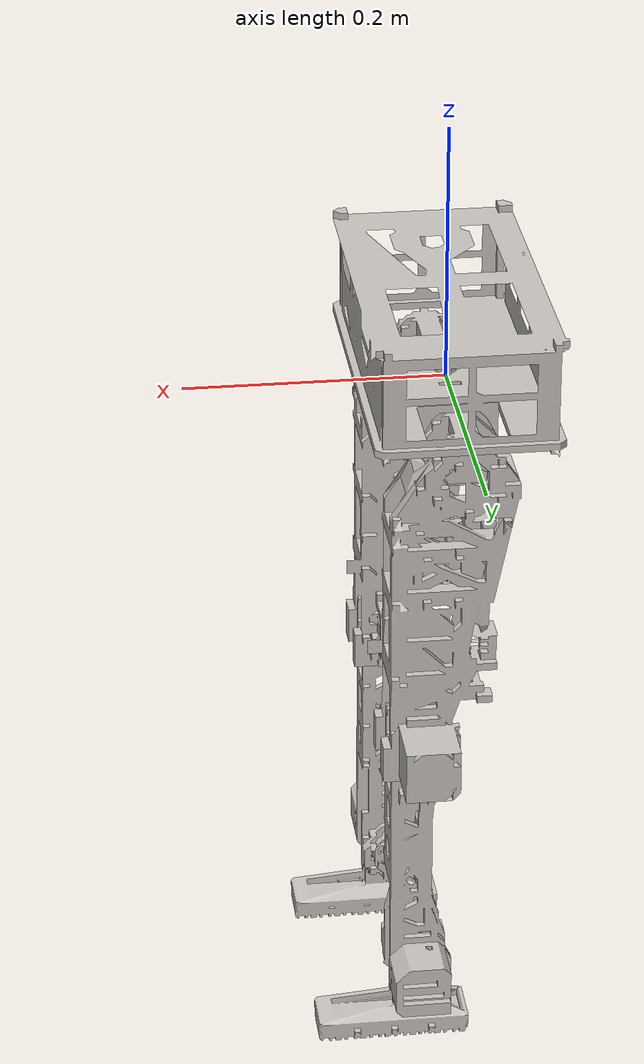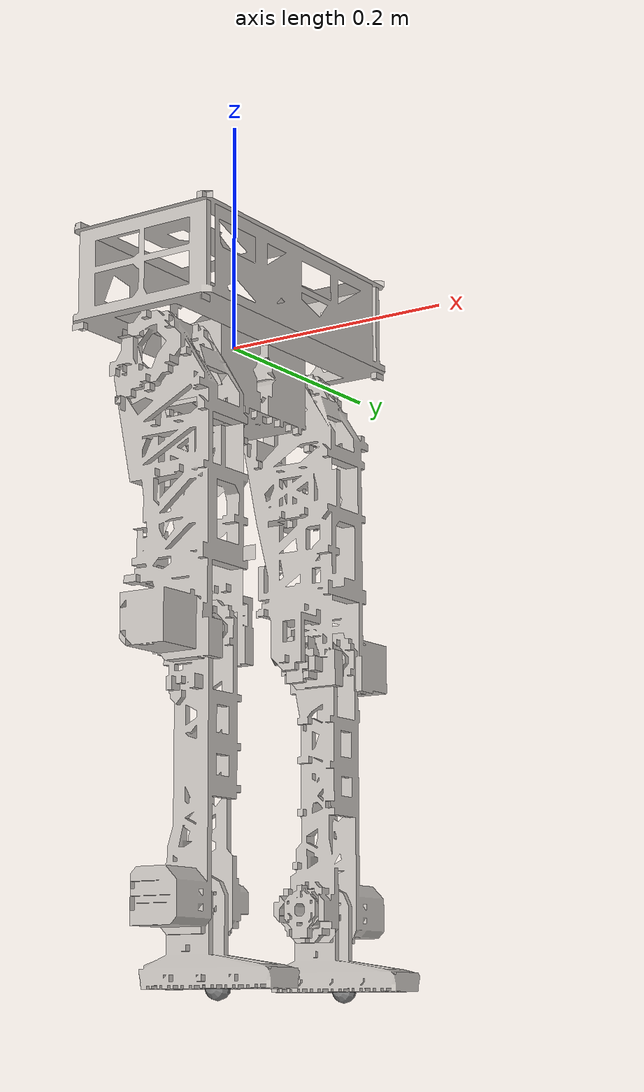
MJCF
<mujoco model="biped" >
  <compiler angle="radian" autolimits="true" eulerseq="zyx"/>
     <option timestep='0.002' iterations='50' solver='PGS' gravity='0 0 -9.81'>
    <flag frictionloss="enable"/>
    </option>
    <size njmax="500" nconmax="100" />

    <visual>
        <quality shadowsize='4096'/>
        <map znear='0.05'/>
    </visual>
    <default>
        <joint limited='true'/>
        <motor ctrllimited='true'/>
        <geom  condim='4' contype="1" conaffinity="15" solref='0.001 2' friction='0.9 0.2 0.2'/>
        <equality solref='0.001 2'/>
        <default class='leg_joint_param'>
            <!-- HTDW-4438-30 rotor inertia (9.1498e-6 kg m^2) reflected
                 through the 30:1 reducer: 9.1498e-6 * 30^2 = 0.00823482. -->
            <!-- Match G1's zero passive joint damping and dry friction. -->
            <joint damping="0" frictionloss="0" armature="0.00823482"/>
        </default>
    </default>
  <statistic meansize="0.164352" extent="1.07561" center="-0.00820016 -1.48012e-05 -0.160784"/>

  <asset>
    <mesh name="base_link" content_type="model/stl" file="../meshes/base_link.stl"/>
    <mesh name="left_leg_Link" content_type="model/stl" file="../meshes/left_leg_Link.stl"/>
    <mesh name="left_knee_link" content_type="model/stl" file="../meshes/left_knee_link.stl"/>
    <mesh name="left_ankle_link" content_type="model/stl" file="../meshes/left_ankle_link.stl"/>
    <mesh name="right_leg_link" content_type="model/stl" file="../meshes/right_leg_link.stl"/>
    <mesh name="right_knee_link" content_type="model/stl" file="../meshes/right_knee_link.stl"/>
    <mesh name="right_ankle_link" content_type="model/stl" file="../meshes/right_ankle_link.stl"/>
    <material name="matplane" reflectance="0.3" texture="texplane" texrepeat="1 1" texuniform="true"/>
    <material name="matgeom" texture="texgeom" texuniform="true" rgba="0.8 0.6 .4 1"/>
    <texture name="texplane" type="2d" builtin="checker" rgb1=".2 .3 .4" rgb2=".1 0.15 0.2" width="512" height="512" mark="cross" markrgb=".8 .8 .8"/>
    <texture name="texgeom" type="cube" builtin="flat" mark="cross" width="127" height="1278" rgb1="0.8 0.6 0.4" rgb2="0.8 0.6 0.4" markrgb="1 1 1" random="0.01"/>
    <texture type="skybox" builtin="gradient" rgb1="1 1 1" rgb2=".6 .8 1" width="256" height="256"/>
  </asset>

  <worldbody>
    <light directional="true" diffuse=".4 .4 .4" specular="0.1 0.1 0.1" pos="0 0 5.0" dir="0 0 -1" castshadow="false"/>
    <light directional="true" diffuse=".6 .6 .6" specular="0.2 0.2 0.2" pos="0 0 4" dir="0 0 -1"/>
    <body name="base_link" pos='0 0 0'>
      <inertial pos="-0.00197519 -0.000666859 0.00700943" quat="0.0557357 0.705656 0.0465698 0.704822" mass="1.0931" diaginertia="0.00811391 0.00765719 0.0041021"/>
      <joint name="base_x" type="slide" axis="1 0 0" limited="false"/>
      <joint name="base_z" type="slide" axis="0 0 1" limited="false"/>
      <joint name="base_pitch" type="hinge" axis="0 1 0" limited="false"/>
      <site name='imu' size='0.01' pos='0.0 0 0.0' quat='1 0 0 0'/>
      <geom type="mesh" contype="0" conaffinity="0" group="1" density="0" rgba="0.776471 0.756863 0.737255 1" mesh="base_link"/>
      <geom type="mesh" rgba="0.776471 0.756863 0.737255 1" mesh="base_link"/>
      <body name="left_leg_Link" pos="0 0.0634 -0.03" quat="0.707107 0.707107 0 0">
        <inertial pos="0.0149188 -0.106758 -0.0292734" quat="0.51360603 -0.51748603 0.408033023 0.549478032" mass="0.69421" diaginertia="0.00626842 0.00617262 0.000852461"/>
        <joint name="left_leg_joint" pos="0 0 0" axis="0 0 1" limited="true" range="-1.05 1.05" class="leg_joint_param"/>
        <geom type="mesh" contype="0" conaffinity="0" group="1" density="0" rgba="0.776471 0.756863 0.737255 1" mesh="left_leg_Link"/>
        <geom type="mesh" rgba="0.776471 0.756863 0.737255 1" mesh="left_leg_Link"/>
        <body name="left_knee_link" pos="0.0299965 -0.228032 -0.053">
          <inertial pos="0.00251067 -0.0938939 0.0258415" quat="0.463290982 -0.548200978 0.452082982 0.529582979" mass="0.482446" diaginertia="0.00417607 0.00406523 0.000257004"/>
          <joint name="left_knee_joint" pos="0 0 0" axis="0 0 1" limited="true" range="-2.09 0" class="leg_joint_param"/>
          <geom type="mesh" contype="0" conaffinity="0" group="1" density="0" rgba="0.776471 0.756863 0.737255 1" mesh="left_knee_link"/>
          <geom type="mesh" rgba="0.776471 0.756863 0.737255 1" mesh="left_knee_link"/>
          <body name="left_ankle_link" pos="0 -0.210003 0.0145">
            <inertial pos="0.011175 -0.035219 0.0181014" quat="0.0987895994 0.0242650999 -0.404795998 -0.908730994" mass="0.164634" diaginertia="0.000241705 0.000196548 0.000115047"/>
            <joint name="left_ankle_joint" pos="0 0 0" axis="0 0 1" limited="true" range="-0.785 0.785" class="leg_joint_param"/>
            <geom type="mesh" contype="0" conaffinity="0" group="1" density="0" rgba="0.776471 0.756863 0.737255 1" mesh="left_ankle_link"/>
            <geom
              name="left_foot_collision"
              type="mesh"
              friction="0.6 0.2 0.2"
              rgba="0.776471 0.756863 0.737255 1"
              mesh="left_ankle_link"
            />
            <site name="left_foot_site" pos="0.020 -0.064 0.0142" size="0.01"/>
          </body>
        </body>
      </body>
      <body name="right_leg_link" pos="0 -0.0634 -0.03" quat="0.707107 -0.707107 0 0">
        <inertial pos="0.0149188 0.106758 -0.0292734" quat="0.549478 0.408033 -0.517486 0.513606" mass="0.69421" diaginertia="0.00626842 0.00617262 0.000852461"/>
        <joint name="right_leg_joint" pos="0 0 0" axis="0 0 -1" limited="true" range="-1.05 1.05" class="leg_joint_param"/>
        <geom type="mesh" contype="0" conaffinity="0" group="1" density="0" rgba="0.776471 0.756863 0.737255 1" mesh="right_leg_link"/>
        <geom type="mesh" rgba="0.776471 0.756863 0.737255 1" mesh="right_leg_link"/>
        <body name="right_knee_link" pos="0.0299965 0.228032 -0.053">
          <inertial pos="0.00251067 0.0938939 0.0258415" quat="0.529583 0.452083 -0.548201 0.463291" mass="0.482446" diaginertia="0.00417607 0.00406523 0.000257004"/>
          <joint name="right_knee_joint" pos="0 0 0" axis="0 0 -1" limited="true" range="-2.09 0" class="leg_joint_param"/>
          <geom type="mesh" contype="0" conaffinity="0" group="1" density="0" rgba="0.776471 0.756863 0.737255 1" mesh="right_knee_link"/>
          <geom type="mesh" rgba="0.776471 0.756863 0.737255 1" mesh="right_knee_link"/>
          <body name="right_ankle_link" pos="0 0.210003 0.0145">
            <inertial pos="0.011175 0.035219 0.0181014" quat="0.908731 0.404796 -0.0242651 -0.0987896" mass="0.164634" diaginertia="0.000241705 0.000196548 0.000115047"/>
            <joint name="right_ankle_joint" pos="0 0 0" axis="0 0 -1" limited="true" range="-0.785 0.785" class="leg_joint_param"/>
            <geom type="mesh" contype="0" conaffinity="0" group="1" density="0" rgba="0.776471 0.756863 0.737255 1" mesh="right_ankle_link"/>
            <geom
              name="right_foot_collision"
              type="mesh"
              friction="0.6 0.2 0.2"
              rgba="0.776471 0.756863 0.737255 1"
              mesh="right_ankle_link"
            />
            <site name="right_foot_site" pos="0.020 0.064 0.0142" size="0.01"/>
          </body>
        </body>
      </body>
    </body>
  </worldbody>

  <sensor>
      <framequat     name='orientation' objtype='site' noise='0.001' objname='imu'/>
        <framepos     name='position' objtype='site' noise='0.001' objname='imu'/>
        <gyro          name='angular-velocity'    site='imu' noise='0.005' cutoff='34.9'/>
        <velocimeter   name='linear-velocity'     site='imu' noise='0.001' cutoff='30'/>
        <accelerometer name='linear-acceleration' site='imu' noise='0.005' cutoff='157'/>
        <magnetometer  name='magnetometer'        site='imu'/>
    <subtreeangmom name="root_angmom" body="base_link"/>
  </sensor>

</mujoco>
